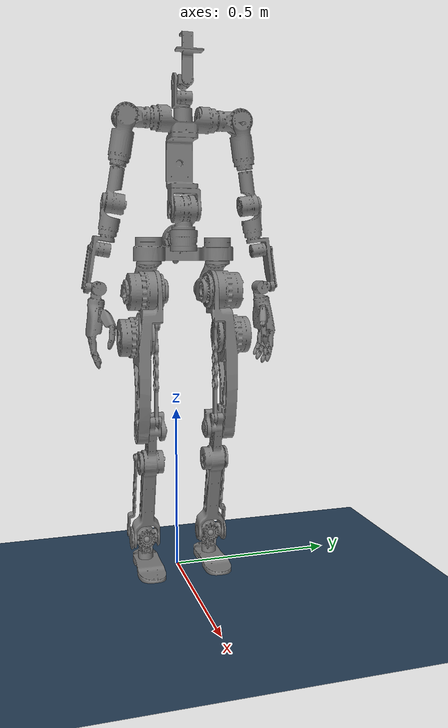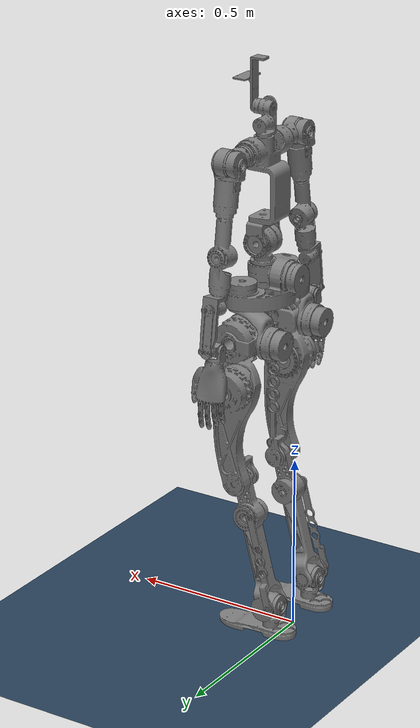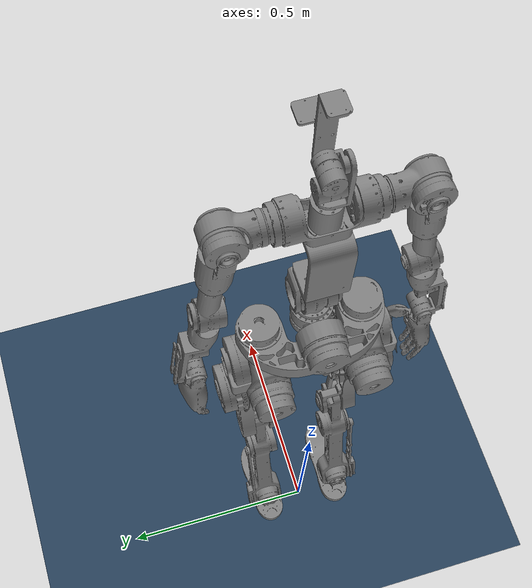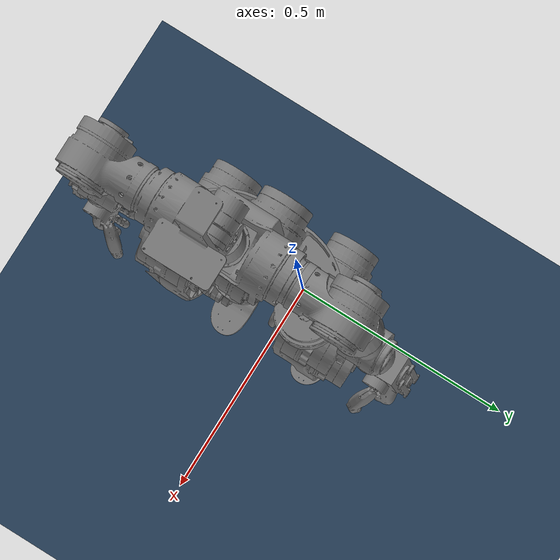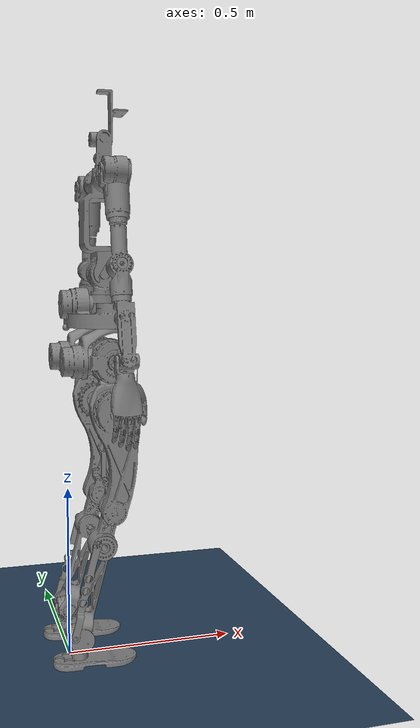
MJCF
<mujoco model="jvrc1 scene">
  <include file="tihu.xml"/>
  <visual>
    <headlight diffuse="0.6 0.6 0.6"  ambient="0.3 0.3 0.3" specular="0 0 0"/>
    <rgba haze="0.15 0.25 0.35 1"/>
    <global azimuth="120" elevation="-20"/>
  </visual>

  <asset>
    <texture type="skybox" builtin="gradient" rgb1="0.3 0.5 0.7" rgb2="0 0 0" width="512"
        height="3072"/>
    <texture type="2d" name="groundplane" builtin="checker" mark="edge" rgb1="0.2 0.3 0.4"
        rgb2="0.1 0.2 0.3" markrgb="0.8 0.8 0.8" width="300" height="300"/>
    <material name="groundplane" texture="groundplane" texuniform="true" texrepeat="1 1"
        reflectance="0.2"/>
  </asset>

  <worldbody>
    <light pos="0 0 1.5" dir="0 0 -1" directional="true"/>
    <geom name="floor" size="0 0 0.25" type="plane" material="groundplane"/>
  </worldbody>

</mujoco>

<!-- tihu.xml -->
<mujoco model="man7">
  <compiler angle="radian" meshdir="../meshes/"/>
  <option timestep="0.001" iterations="50" tolerance="1e-10" solver="Newton" jacobian="dense" cone="pyramidal" />
  <default>
    <geom condim="1" type="mesh" />
    <joint limited="true" damping="0.2" pos="0 0 0" />
    <motor ctrllimited="false" forcelimited="false" />
    <default class="collision">
      <geom condim="3" group="0" rgba="0 0 0 0"/>
    </default>
    <default class="visual">
      <geom group="1" conaffinity="0" contype="0" />
    </default>
  </default>
  <asset>
    <mesh name="PELVIS_col" file="convex/PELVIS_S.STL"/>
    <mesh name="L_HIP_R_col" file="convex/L_HIP_R_S.STL"/>
    <mesh name="L_HIP_P_col" file="convex/L_HIP_P_S.STL"/>
    <mesh name="L_HIP_Y_col" file="convex/L_HIP_Y_S.STL"/>
    <mesh name="L_KNEE_P_col" file="convex/L_KNEE_P_S.STL"/>
    <mesh name="L_ANKLE_R_col" file="convex/L_ANKLE_R_S.STL"/>
    <mesh name="R_HIP_R_col" file="convex/R_HIP_R_S.STL"/>
    <mesh name="R_HIP_P_col" file="convex/R_HIP_P_S.STL"/>
    <mesh name="R_HIP_Y_col" file="convex/R_HIP_Y_S.STL"/>
    <mesh name="R_KNEE_P_col" file="convex/R_KNEE_P_S.STL"/>
    <mesh name="R_ANKLE_R_col" file="convex/R_ANKLE_R_S.STL"/>
    <mesh name="WAIST_Y_col" file="convex/WAIST_Y_S.STL"/>
    <mesh name="WAIST_P_col" file="convex/WAIST_P_S.STL"/>
    <mesh name="L_SHOULDER_R_col" file="convex/L_SHOULDER_R_S.STL"/>
    <mesh name="L_SHOULDER_Y_col" file="convex/L_SHOULDER_Y_S.STL"/>
    <mesh name="L_ELBOW_P_col" file="convex/L_ELBOW_P_S.STL"/>
    <mesh name="R_SHOULDER_R_col" file="convex/R_SHOULDER_R_S.STL"/>
    <mesh name="R_SHOULDER_Y_col" file="convex/R_SHOULDER_Y_S.STL"/>
    <mesh name="R_ELBOW_P_col" file="convex/R_ELBOW_P_S.STL"/>

    <mesh name="PELVIS_vis" file="visual/PELVIS_S.STL"/>
    <mesh name="L_HIP_Y_vis" file="visual/L_HIP_Y_S.STL"/>
    <mesh name="L_HIP_R_vis" file="visual/L_HIP_R_S.STL"/>
    <mesh name="L_HIP_P_vis" file="visual/L_HIP_P_S.STL"/>
    <mesh name="L_KNEE_P_vis" file="visual/L_KNEE_P_S.STL"/>
    <mesh name="L_ANKLE_P4_vis" file="visual/L_ANKLE_P4_S.STL"/>
    <mesh name="L_ANKLE_R_vis" file="visual/L_ANKLE_R_S.STL"/>
    <mesh name="L_ANKLE_P_vis" file="visual/L_ANKLE_P_S.STL"/>
    <mesh name="L_ANKLE_P2_vis" file="visual/L_ANKLE_P2_S.STL"/>
    <mesh name="L_KNEE_vis" file="visual/L_KNEE_S.STL"/>
    <mesh name="L_KNEE_P1_vis" file="visual/L_KNEE_P1_S.STL"/>
    <mesh name="R_HIP_Y_vis" file="visual/R_HIP_Y_S.STL"/>
    <mesh name="R_HIP_R_vis" file="visual/R_HIP_R_S.STL"/>
    <mesh name="R_HIP_P_vis" file="visual/R_HIP_P_S.STL"/>
    <mesh name="R_KNEE_P_vis" file="visual/R_KNEE_P_S.STL"/>
    <mesh name="R_ANKLE_P4_vis" file="visual/R_ANKLE_P4_S.STL"/>
    <mesh name="R_ANKLE_R_vis" file="visual/R_ANKLE_R_S.STL"/>
    <mesh name="R_ANKLE_P_vis" file="visual/R_ANKLE_P_S.STL"/>
    <mesh name="R_ANKLE_P2_vis" file="visual/R_ANKLE_P2_S.STL"/>
    <mesh name="R_KNEE_vis" file="visual/R_KNEE_S.STL"/>
    <mesh name="R_KNEE_P1_vis" file="visual/R_KNEE_P1_S.STL"/>
    <mesh name="WAIST_R_vis" file="visual/WAIST_R_S.STL"/>
    <mesh name="WAIST_Y_vis" file="visual/WAIST_Y_S.STL"/>
    <mesh name="WAIST_P_vis" file="visual/WAIST_P_S.STL"/>
    <mesh name="L_SHOULDER_P_vis" file="visual/L_SHOULDER_P_S.STL"/>
    <mesh name="L_SHOULDER_R_vis" file="visual/L_SHOULDER_R_S.STL"/>
    <mesh name="L_SHOULDER_Y_vis" file="visual/L_SHOULDER_Y_S.STL"/>
    <mesh name="L_ELBOW_P_vis" file="visual/L_ELBOW_P_S.STL"/>
    <mesh name="R_SHOULDER_P_vis" file="visual/R_SHOULDER_P_S.STL"/>
    <mesh name="R_SHOULDER_R_vis" file="visual/R_SHOULDER_R_S.STL"/>
    <mesh name="R_SHOULDER_Y_vis" file="visual/R_SHOULDER_Y_S.STL"/>
    <mesh name="R_ELBOW_P_vis" file="visual/R_ELBOW_P_S.STL"/>
  </asset>
  <worldbody>
    <light directional="false" diffuse="0.2 0.2 0.2" specular="0 0 0" pos="0 0 2" dir="0 0 -1" castshadow="false" />
    <light mode="targetbodycom" target="PELVIS_S" directional="false" diffuse=".8 .8 .8" specular="0.3 0.3 0.3" pos="0 0 4.0" dir="0 0 -1" />
    <body name="PELVIS_S" pos="0 0 0.97">
	    <freejoint name="root" />
	    <inertial pos="0 0 0" mass="1.11909973757949" diaginertia="0.00795678827767079 0.00179893770432253 0.00868203559910644"/>
	    <geom class="visual" mesh="PELVIS_vis"/>
	    <geom class="collision" mesh="PELVIS_col" />
      <site name="imu" size="0.01" pos="0 0 0" />
	    <body name="R_HIP_Y_S" pos="0.1067 -0.105 0">
	      <inertial pos="-0.0436053 -5.62346e-07 -0.0295219" quat="-2.90363e-05 0.397497 -1.69798e-05 0.917603" mass="0.386014" diaginertia="0.000791103 0.00075007 0.000299291"/>
	      <geom class="visual" mesh="R_HIP_Y_vis"/>
	      <geom class="collision" mesh="R_HIP_Y_col" />
	      <joint name="R_HIP_Y" pos="0 0 0" axis="0 0 -1" range="-0.523 0.523"/>
	    <body name="R_HIP_R_S" pos="-0.074 0 -0.09">
		    <inertial pos="0.0503669 0.0188192 -2.1576e-07" quat="0.561661 0.429569 -0.561671 0.429572" mass="0.419998" diaginertia="0.000908031 0.000811693 0.000520492"/>
		    <geom class="visual" mesh="R_HIP_R_vis"/>
		    <geom class="collision" mesh="R_HIP_R_col" />
		    <joint name="R_HIP_R" pos="0 0 0" axis="1 0 0" range="-0.8 0.3"/>
		    <body name="R_HIP_P_S" pos="0.074 0.0252 0">
		      <inertial pos="0.0119949 -0.0381204 -0.248722" quat="-0.703792 0.0316042 0.0263002 0.709215" mass="1.6821" diaginertia="0.0282669 0.0267636 0.00240226"/>
		      <!--inertial pos="0.0128553 -0.0629669 -0.23674" quat="0.707048 0.00313749 0.00245362 0.707154" mass="1.6821" diaginertia="0.0561655 0.0533714 0.00499458"/-->
		      <geom class="visual" mesh="R_HIP_P_vis"/>
		      <geom class="collision" mesh="R_HIP_P_col" />
		      <joint name="R_HIP_P" pos="0 0 0" axis="0 -1 0" range="-1.1 1.5"/>
		    <body name="R_KNEE_S" pos="0 -0.0178 -0.135">
		      <inertial pos="0.00406406 -0.00135985 0.00711341" quat="0.679749 0.168508 0.194689 0.686763" mass="0.27648" diaginertia="0.000478083 0.000270746 0.00021506"/>
		      <geom class="visual" mesh="R_KNEE_vis"/>
		      <joint name="R_KNEE" pos="0 0 0" axis="0 1 0" range="0 2.09"/>
		    <body name="R_KNEE_P1_S" pos="0.019888 0.0171 0.034706">
		      <inertial pos="0 -0.0101 -0.142601" quat="0.707107 0 0 0.707107" mass="0.327213" diaginertia="0.00294441 0.00292476 2.50159e-05"/>
		      <geom class="visual" mesh="R_KNEE_P1_vis"/>
		      <joint name="R_KNEE_P1" pos="0 0 0" axis="0 1 0" range="-2.09 0.3"/>
		    </body>
		  </body>
		  <body name="R_KNEE_P_S" pos="0 0.0229 -0.42">
		    <inertial pos="-0.0417752 -0.0458876 -0.162141" quat="0.706685 0.0981365 0.0893456 0.69497" mass="1.00041" diaginertia="0.0124692 0.0123981 0.000504554"/>
		    <!--inertial pos="-0.0474188 -0.0459252 -0.182363" quat="0.687212 0.0929442 0.0893413 0.714926" mass="0.9909" diaginertia="0.024881 0.0247638 0.000984403"/-->
		    <geom class="visual" mesh="R_KNEE_P_vis"/>
		    <geom class="collision" mesh="R_KNEE_P_col" />
		    <joint name="R_KNEE_P" pos="0 0 0" axis="0 1 0" range="-0.3 2.09"/>
		    <body name="R_ANKLE_P_S" pos="-0.026847 -0.0796 -0.10151">
		      <inertial pos="-0.00151583 0.00304741 0.000875166" quat="0.345721 0.607817 0.616828 0.361328" mass="0.154316" diaginertia="0.000112889 6.06672e-05 5.44375e-05"/>
		      <geom class="visual" mesh="R_ANKLE_P_vis"/>
		      <joint name="R_ANKLE_P" pos="0 0 0" axis="0 -1 0" range="-0.8 0.8"/>
		      <body name="R_ANKLE_P2_S" pos="-0.021651 -0.0111 0.0125">
		        <inertial pos="-0.0342443 0.00279118 -0.129477" quat="0.698254 0.0707022 0.111541 0.703563" mass="0.250237" diaginertia="0.00170098 0.00169422 1.64471e-05"/>
		        <geom class="visual" mesh="R_ANKLE_P2_vis"/>
		        <joint name="R_ANKLE_P2" pos="0 0 0" axis="0 -1 0" range="-0.8 0.8"/>
		      </body>
		    </body>
		    <body name="R_ANKLE_P4_S" pos="-0.094605 -0.0941 -0.3577">
		      <inertial pos="0.0112895 0.0273077 0.000334311" quat="0.71386 0.699363 -0.0307187 0.0187421" mass="0.26318" diaginertia="0.000268693 0.000234066 0.000196706"/>
		      <geom class="visual" mesh="R_ANKLE_P4_vis"/>
		      <joint name="R_ANKLE_P4" pos="0 0 0" axis="0 -1 0" range="-0.8 0.8"/>
		      <body name="R_ANKLE_R_S" pos="0.02595 0.046 0">
		        <inertial pos="0.00622453 0.00173883 -0.0690599" quat="0.00747637 0.705563 -0.00770526 0.708566" mass="0.523642" diaginertia="0.00204457 0.00185377 0.000260323"/>
		        <geom class="visual" mesh="R_ANKLE_R_vis"/>
		        <geom class="collision" mesh="R_ANKLE_R_col" />
		        <joint name="R_ANKLE_R" pos="0 0 0" axis="1 0 0" range="-0.5 0.5"/>
		        <site name="rf_force" size="0.01" pos="0.0 0.0 0.0" />
		      </body>
		    </body>
		  </body>
		</body>
	</body>
</body>
	    <body name="L_HIP_Y_S" pos="0.1067 0.105 0.0005">
	      <inertial pos="-0.0436053 -5.5822e-07 -0.0300219" quat="-2.90363e-05 0.397497 -1.69798e-05 0.917603" mass="0.386014" diaginertia="0.000791103 0.00075007 0.000299291"/>
	      <geom class="visual" mesh="L_HIP_Y_vis"/>
	      <geom class="collision" mesh="L_HIP_Y_col" />
	      <joint name="L_HIP_Y" pos="0 0 0" axis="0 0 -1" range="-0.523 0.523"/>

	      <body name="L_HIP_R_S" pos="-0.074 0 -0.0905">
		      <inertial pos="0.0499852 -0.0188192 0.000744731" quat="0.429572 0.561671 -0.429569 0.561661" mass="0.419998" diaginertia="0.000908031 0.000811693 0.000520492"/>
		      <geom class="visual" mesh="L_HIP_R_vis"/>
		      <geom class="collision" mesh="L_HIP_R_col" />
		      <joint name="L_HIP_R" pos="0 0 0" axis="1 0 0" range="-0.3 0.8"/>
		      <body name="L_HIP_P_S" pos="0.074 -0.0255 0">
		        <inertial pos="0.0119949 0.0381204 -0.248722" quat="0.703792 0.0316042 -0.0263002 0.709215" mass="1.6821" diaginertia="0.0282669 0.0267636 0.00240226"/>
		        <geom class="visual" mesh="L_HIP_P_vis"/>
		        <geom class="collision" mesh="L_HIP_P_col" />
		        <joint name="L_HIP_P" pos="0 0 0" axis="0 1 0" range="-2 1.1"/>
		  <body name="L_KNEE_S" pos="0 0.0181 -0.135">
		    <inertial pos="0.00282442 0.00262662 0.00490584" quat="0.686589 0.195303 0.168991 0.679628" mass="0.276478" diaginertia="0.000475818 0.000269567 0.000213879"/>
		    <geom class="visual" mesh="L_KNEE_vis"/>
		    <joint name="L_KNEE" pos="0 0 0" axis="0 -1 0" range="-2.09 0"/>

		    <body name="L_KNEE_P1_S" pos="0.019888 -0.0121 0.034706">
		      <inertial pos="0 0.0051 -0.142601" quat="0.707107 0 0 0.707107" mass="0.327213" diaginertia="0.00294441 0.00292476 2.50159e-05"/>
		      <geom class="visual" mesh="L_KNEE_P1_vis"/>
		      <joint name="L_KNEE_P1" pos="0 0 0" axis="0 -1 0" range="-0.3 2.09"/>

		    </body>
		  </body>
		  <body name="L_KNEE_P_S" pos="0 -0.0226 -0.42">
		    <inertial pos="-0.0417752 0.0458876 -0.162141" quat="0.706685 0.0981365 0.0893456 0.69497" mass="1.00041" diaginertia="0.0124692 0.0123981 0.000504554"/>
		    <geom class="visual" mesh="L_KNEE_P_vis"/>
		    <geom class="collision" mesh="L_KNEE_P_col" />
		    <joint name="L_KNEE_P" pos="0 0 0" axis="0 -1 0" range="-2.09 0.3"/>
			<body name="L_ANKLE_P_S" pos="-0.026847 0.0796 -0.10151">
		      <inertial pos="-0.00151583 -0.00304741 0.000875166" quat="0.361328 0.616828 0.607817 0.345721" mass="0.154316" diaginertia="0.000112889 6.06672e-05 5.44375e-05"/>
		      <geom class="visual" mesh="L_ANKLE_P_vis"/>
		      <joint name="L_ANKLE_P" pos="0 0 0" axis="0 1 0" range="-0.8 0.8"/>

		      <body name="L_ANKLE_P2_S" pos="-0.021651 0.0111 0.0125">
		        <inertial pos="-0.0342443 -0.00279118 -0.129477" quat="0.703563 0.111541 0.0707022 0.698254" mass="0.250237" diaginertia="0.00170098 0.00169422 1.64471e-05"/>
		        <geom class="visual" mesh="L_ANKLE_P2_vis"/>
		        <joint name="L_ANKLE_P2" pos="0 0 0" axis="0 1 0" range="-0.8 0.8"/>
		      </body>
		    </body>
		    <body name="L_ANKLE_P4_S" pos="-0.094605 0.0941 -0.3577">
		      <inertial pos="0.0112895 -0.0273077 0.000334311" quat="0.71386 0.699363 -0.0307187 0.0187421" mass="0.26318" diaginertia="0.000268693 0.000234066 0.000196706"/>
		      <!--inertial pos="0.000409428 -0.021047 0.000465872" quat="0.991646 -0.0947259 -0.0763875 0.0427881" mass="0.263181" diaginertia="0.000158826 0.000147028 0.000142074"/-->
		      <geom class="visual" mesh="L_ANKLE_P4_vis"/>
		      <joint name="L_ANKLE_P4" pos="0 0 0" axis="0 1 0" range="-0.8 0.8"/>

		      <body name="L_ANKLE_R_S" pos="0.02595 -0.0495 0">
		        <inertial pos="0.00622453 -0.00173883 -0.0690599" quat="0.00747637 0.705563 -0.00770526 0.708566" mass="0.523642" diaginertia="0.00204457 0.00185377 0.000260323"/>
		        <!--inertial pos="0.00155752 -0.00191342 -0.0695507" quat="-0.00235157 0.705325 0.00277676 0.708874" mass="0.52364" diaginertia="0.00293108 0.0026267 0.000376259"/-->
		        <geom class="visual" mesh="L_ANKLE_R_vis"/>
		        <geom class="collision" mesh="L_ANKLE_R_col" />
		        <joint name="L_ANKLE_R" pos="0 0 0" axis="1 0 0" range="-0.5 0.5"/>
		        <site name="lf_force" size="0.01" pos="0.0 0.0 0.0" />
		      </body>
		    </body>
		  </body>
		</body>
	      </body>
	    </body>
	    <body name="WAIST_R_S" pos="0.0597 0 0.065">
	      <inertial pos="0.0147147 1.71251e-07 0.00581657" quat="8.01499e-08 0.570126 1.96577e-06 0.821557" mass="0.152815" diaginertia="0.000196724 0.00015804 0.000109107"/>
	      <geom class="visual" mesh="WAIST_R_vis"/>
		<body name="WAIST_Y_S" pos="0.047 0 0.0247">
		<inertial pos="7.2187e-08 0.00846305 0.0305767" quat="0.693891 -0.136061 0.136063 0.693895" mass="0.130303" diaginertia="0.000182569 0.000148102 8.83884e-05"/>
		<geom class="visual" mesh="WAIST_Y_vis"/>
		<geom class="collision" mesh="WAIST_Y_col" />

		<body name="WAIST_P_S" pos="0 0.037277 0.0623">
		  <inertial pos="-0.0139051 -0.0371406 0.180713" quat="0.999767 0.00601119 0.0205269 -0.00285676" mass="1.75329" diaginertia="0.00536717 0.00487879 0.00250459"/>
		  <geom class="visual" mesh="WAIST_P_vis"/>
		  <geom class="collision" mesh="WAIST_P_col" />

		  <body name="L_SHOULDER_P_S" pos="0 0.057223 0.262">
		    <inertial pos="0.00490599 0.0412219 6.40882e-06" quat="0.698761 0.698553 -0.109013 -0.108961" mass="0.15354" diaginertia="0.000153597 0.000121372 9.66352e-05"/>
		    <geom class="visual" mesh="L_SHOULDER_P_vis"/>

		    <body name="L_SHOULDER_R_S" pos="0.035 0.0765 0">
		      <inertial pos="-0.0340204 0.00793169 -0.0566176" quat="0.976253 0.0680724 0.205154 0.0144096" mass="0.219298" diaginertia="0.000280759 0.000267943 0.000156245"/>
		      <geom class="visual" mesh="L_SHOULDER_R_vis"/>
		      <geom class="collision" mesh="L_SHOULDER_R_col" />

		      <body name="L_SHOULDER_Y_S" pos="-0.035 0.017911 -0.12785" quat="0.997574 0.0695399 0.000222398 -0.00319063">
		        <inertial pos="-1.13184e-07 0.00507723 -0.0748516" quat="0.704185 0.0640224 -0.0640276 0.704219" mass="0.107848" diaginertia="0.000162595 0.000149891 4.13704e-05"/>
		        <geom class="visual" mesh="L_SHOULDER_Y_vis"/>
		        <geom class="collision" mesh="L_SHOULDER_Y_col" />

		        <body name="L_ELBOW_P_S" pos="0 0.0305 -0.1209">
		          <inertial pos="-0.00153311 -0.0049434 -0.158442" quat="0.996417 0.0627344 0.000662223 -0.0567182" mass="0.422099" diaginertia="0.00068057 0.00067096 0.000149989"/>
		          <geom class="visual" mesh="L_ELBOW_P_vis"/>
		          <geom class="collision" mesh="L_ELBOW_P_col" />

		        </body>
		      </body>
		    </body>
		  </body>
		  <body name="R_SHOULDER_P_S" pos="0 -0.13178 0.262">
		    <inertial pos="0.00490599 -0.0412219 -6.40932e-06" quat="0.698761 0.698553 0.109013 0.108961" mass="0.15354" diaginertia="0.000153597 0.000121372 9.66352e-05"/>
		    <geom class="visual" mesh="R_SHOULDER_P_vis"/>

		    <body name="R_SHOULDER_R_S" pos="0.035 -0.0765 0">
		      <inertial pos="-0.0340205 -0.00920489 -0.0564246" quat="0.97543 -0.0790015 0.204998 -0.0164625" mass="0.219297" diaginertia="0.000280762 0.000267944 0.000156246"/>
		      <geom class="visual" mesh="R_SHOULDER_R_vis"/>
		      <geom class="collision" mesh="R_SHOULDER_R_col" />

		      <body name="R_SHOULDER_Y_S" pos="-0.035 -0.020785 -0.12742" quat="0.996726 -0.0807637 0.000311182 0.00384067">
		        <inertial pos="1.11369e-07 -0.00507727 -0.0748516" quat="0.704185 -0.0640225 0.0640277 0.704219" mass="0.107848" diaginertia="0.000162595 0.000149891 4.13704e-05"/>
		        <geom class="visual" mesh="R_SHOULDER_Y_vis"/>
		        <geom class="collision" mesh="R_SHOULDER_Y_col" />

		        <body name="R_ELBOW_P_S" pos="0 -0.0205 -0.1209">
		          <inertial pos="0.000490765 -0.0054461 -0.158438" quat="0.996567 -0.0630247 -0.00592519 0.053348" mass="0.4221" diaginertia="0.000680618 0.000670957 0.000149945"/>
		          <geom class="visual" mesh="R_ELBOW_P_vis"/>
		          <geom class="collision" mesh="R_ELBOW_P_col" />

		        </body>
		      </body>
		    </body>
		  </body>
		</body>
	      </body>
	    </body>
	</body>
  </worldbody>
  <contact>
    <exclude body1="WAIST_P_S" body2="L_SHOULDER_R_S" />
    <exclude body1="L_SHOULDER_R_S" body2="L_SHOULDER_Y_S" />
    <exclude body1="L_SHOULDER_Y_S" body2="L_ELBOW_P_S" />
    <exclude body1="WAIST_P_S" body2="R_SHOULDER_R_S" />
    <exclude body1="R_SHOULDER_R_S" body2="R_SHOULDER_Y_S" />
    <exclude body1="R_SHOULDER_Y_S" body2="R_ELBOW_P_S" />

    <exclude body1="WAIST_P_S" body2="WAIST_Y_S" />
    <exclude body1="WAIST_P_S" body2="PELVIS_S" />
    <exclude body1="PELVIS_S" body2="WAIST_Y_S" />

    <exclude body1="PELVIS_S" body2="L_HIP_P_S" />
    <exclude body1="L_HIP_P_S" body2="L_HIP_R_S" />
	  <exclude body1="L_HIP_P_S" body2="L_HIP_Y_S" />
    <exclude body1="L_HIP_P_S" body2="L_KNEE_P_S" />
    <exclude body1="L_KNEE_P_S" body2="L_ANKLE_R_S" />

    <exclude body1="PELVIS_S" body2="R_HIP_P_S" />
    <exclude body1="R_HIP_P_S" body2="R_HIP_R_S" />
	  <exclude body1="R_HIP_P_S" body2="R_HIP_Y_S" />
    <exclude body1="R_HIP_P_S" body2="R_KNEE_P_S" />
    <exclude body1="R_KNEE_P_S" body2="R_ANKLE_R_S" />
  </contact>

  <equality>
     <connect body1="L_ANKLE_P2_S" body2="L_ANKLE_P4_S" anchor="-0.06776 0.00695 -0.25619"/>
     <connect body1="R_ANKLE_P2_S" body2="R_ANKLE_P4_S" anchor="-0.06776 -0.00695 -0.25619"/>
     <connect body1="L_KNEE_P_S" body2="L_KNEE_P1_S" anchor="0.01989 0.0337 0.03471"/>
     <connect body1="R_KNEE_P_S" body2="R_KNEE_P1_S" anchor="0.01989 -0.0337 0.03471"/>
  </equality>
  <actuator>
    <!-- right leg -->
    <motor name="R_HIP_Y_motor" joint="R_HIP_Y" gear="101"/>
    <motor name="R_HIP_R_motor" joint="R_HIP_R" gear="101"/>
    <motor name="R_HIP_P_motor" joint="R_HIP_P" gear="51"/>
    <motor name="R_KNEE_motor" joint="R_KNEE" gear="51"/>
    <motor name="R_ANKLE_P_motor" joint="R_ANKLE_P" gear="51"/>
    <motor name="R_ANKLE_R_motor" joint="R_ANKLE_R" gear="51"/>
    <!-- left leg -->
    <motor name="L_HIP_Y_motor" joint="L_HIP_Y" gear="101"/>
    <motor name="L_HIP_R_motor" joint="L_HIP_R" gear="101"/>
    <motor name="L_HIP_P_motor" joint="L_HIP_P" gear="51"/>
    <motor name="L_KNEE_motor" joint="L_KNEE" gear="51"/>
    <motor name="L_ANKLE_P_motor" joint="L_ANKLE_P" gear="51"/>
    <motor name="L_ANKLE_R_motor" joint="L_ANKLE_R" gear="51"/>
  </actuator>

  <sensor>
    <!-- F/T sensors -->
    <!-- right foot -->
    <force name="RightFootForceSensor_fsensor" site="rf_force" />
    <torque name="RightFootForceSensor_tsensor" site="rf_force" />
    <!-- left foot -->
    <force name="LeftFootForceSensor_fsensor" site="lf_force" />
    <torque name="LeftFootForceSensor_tsensor" site="lf_force" />
    <!-- imu -->
    <gyro name="Accelerometer_gyro" site="imu" />
    <accelerometer name="Accelerometer_accelerometer" site="imu" />
  </sensor>

</mujoco>
